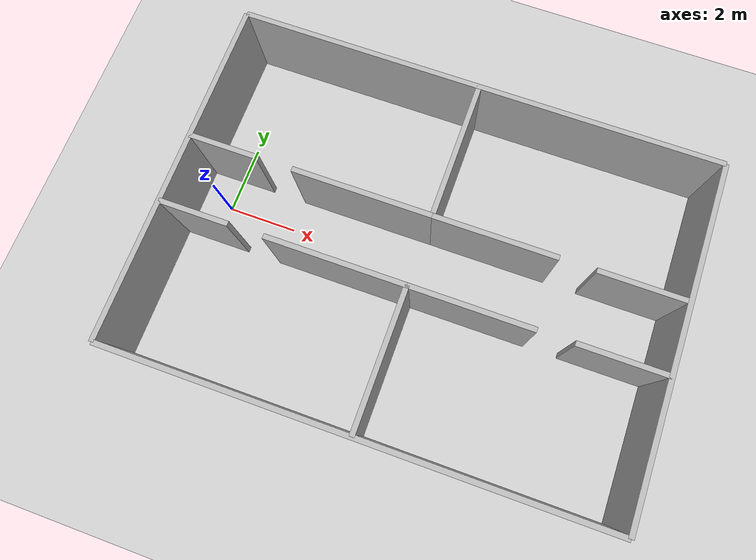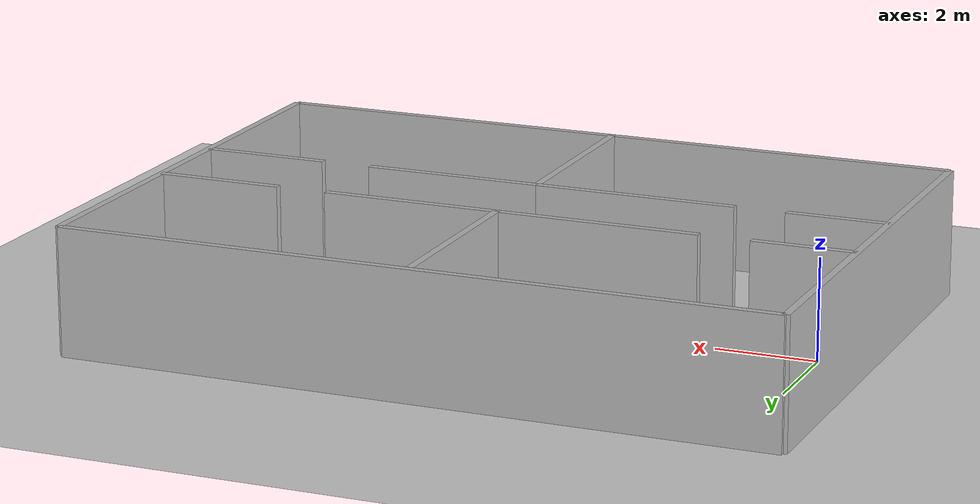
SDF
<?xml version="1.0" ?>
<sdf version="1.6">
  <world name="hospital">
    <include><uri>model://ground_plane</uri></include>
    <include><uri>model://sun</uri></include>

    <model name="wall_north"><static>true</static><link name="link">
      <pose>6 5 1.25 0 0 0</pose>
      <collision name="c"><geometry><box><size>14 0.15 2.5</size></box></geometry></collision>
      <visual name="v"><geometry><box><size>14 0.15 2.5</size></box></geometry></visual>
    </link></model>

    <model name="wall_south"><static>true</static><link name="link">
      <pose>6 -5 1.25 0 0 0</pose>
      <collision name="c"><geometry><box><size>14 0.15 2.5</size></box></geometry></collision>
      <visual name="v"><geometry><box><size>14 0.15 2.5</size></box></geometry></visual>
    </link></model>

    <model name="wall_west"><static>true</static><link name="link">
      <pose>-1 0 1.25 0 0 0</pose>
      <collision name="c"><geometry><box><size>0.15 10 2.5</size></box></geometry></collision>
      <visual name="v"><geometry><box><size>0.15 10 2.5</size></box></geometry></visual>
    </link></model>

    <model name="wall_east"><static>true</static><link name="link">
      <pose>13 0 1.25 0 0 0</pose>
      <collision name="c"><geometry><box><size>0.15 10 2.5</size></box></geometry></collision>
      <visual name="v"><geometry><box><size>0.15 10 2.5</size></box></geometry></visual>
    </link></model>

    <model name="divider_top"><static>true</static><link name="link">
      <pose>6 3 1.25 0 0 0</pose>
      <collision name="c"><geometry><box><size>0.15 4 2.5</size></box></geometry></collision>
      <visual name="v"><geometry><box><size>0.15 4 2.5</size></box></geometry></visual>
    </link></model>

    <model name="divider_bottom"><static>true</static><link name="link">
      <pose>6 -3 1.25 0 0 0</pose>
      <collision name="c"><geometry><box><size>0.15 4 2.5</size></box></geometry></collision>
      <visual name="v"><geometry><box><size>0.15 4 2.5</size></box></geometry></visual>
    </link></model>

    <model name="r1_wall_a"><static>true</static><link name="link">
      <pose>0 1 1.25 0 0 0</pose>
      <collision name="c"><geometry><box><size>2 0.15 2.5</size></box></geometry></collision>
      <visual name="v"><geometry><box><size>2 0.15 2.5</size></box></geometry></visual>
    </link></model>
    <model name="r1_wall_b"><static>true</static><link name="link">
      <pose>4 1 1.25 0 0 0</pose>
      <collision name="c"><geometry><box><size>4 0.15 2.5</size></box></geometry></collision>
      <visual name="v"><geometry><box><size>4 0.15 2.5</size></box></geometry></visual>
    </link></model>

    <model name="r2_wall_a"><static>true</static><link name="link">
      <pose>7.75 1 1.25 0 0 0</pose>
      <collision name="c"><geometry><box><size>3.5 0.15 2.5</size></box></geometry></collision>
      <visual name="v"><geometry><box><size>3.5 0.15 2.5</size></box></geometry></visual>
    </link></model>
    <model name="r2_wall_b"><static>true</static><link name="link">
      <pose>11.75 1 1.25 0 0 0</pose>
      <collision name="c"><geometry><box><size>2.5 0.15 2.5</size></box></geometry></collision>
      <visual name="v"><geometry><box><size>2.5 0.15 2.5</size></box></geometry></visual>
    </link></model>

    <model name="r3_wall_a"><static>true</static><link name="link">
      <pose>0 -1 1.25 0 0 0</pose>
      <collision name="c"><geometry><box><size>2 0.15 2.5</size></box></geometry></collision>
      <visual name="v"><geometry><box><size>2 0.15 2.5</size></box></geometry></visual>
    </link></model>
    <model name="r3_wall_b"><static>true</static><link name="link">
      <pose>4 -1 1.25 0 0 0</pose>
      <collision name="c"><geometry><box><size>4 0.15 2.5</size></box></geometry></collision>
      <visual name="v"><geometry><box><size>4 0.15 2.5</size></box></geometry></visual>
    </link></model>

    <model name="r4_wall_a"><static>true</static><link name="link">
      <pose>7.75 -1 1.25 0 0 0</pose>
      <collision name="c"><geometry><box><size>3.5 0.15 2.5</size></box></geometry></collision>
      <visual name="v"><geometry><box><size>3.5 0.15 2.5</size></box></geometry></visual>
    </link></model>
    <model name="r4_wall_b"><static>true</static><link name="link">
      <pose>11.75 -1 1.25 0 0 0</pose>
      <collision name="c"><geometry><box><size>2.5 0.15 2.5</size></box></geometry></collision>
      <visual name="v"><geometry><box><size>2.5 0.15 2.5</size></box></geometry></visual>
    </link></model>

  </world>
</sdf>
